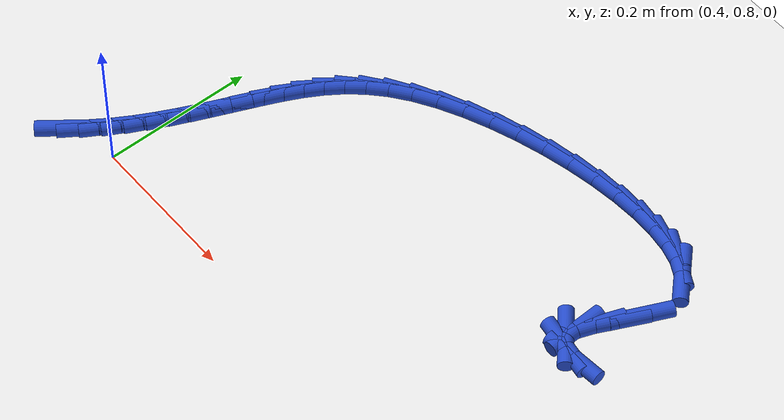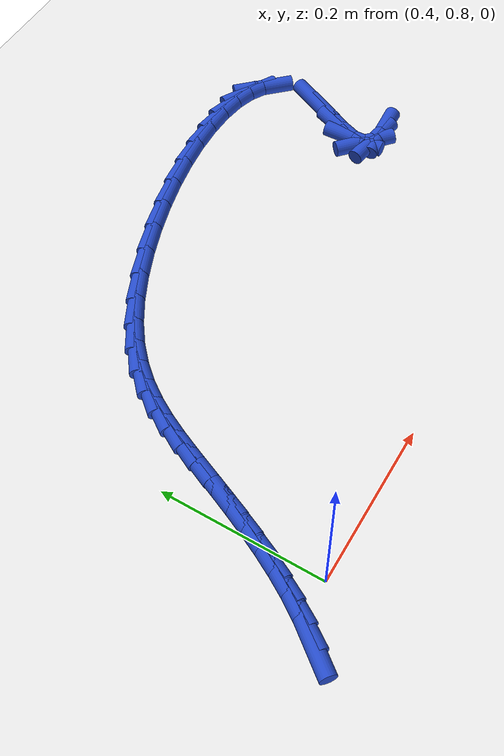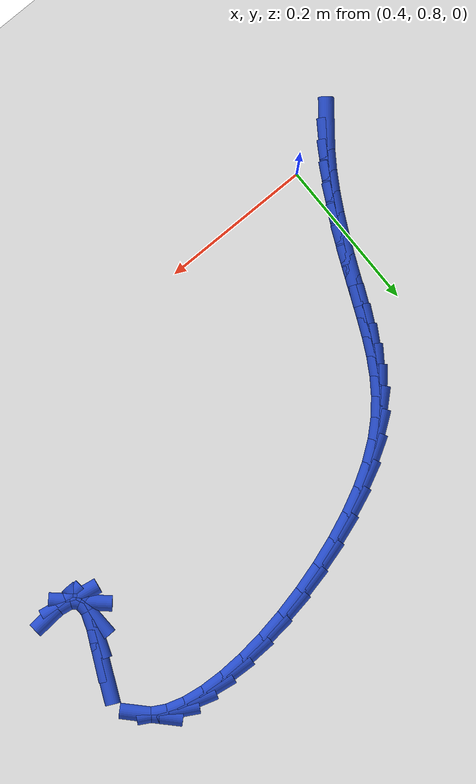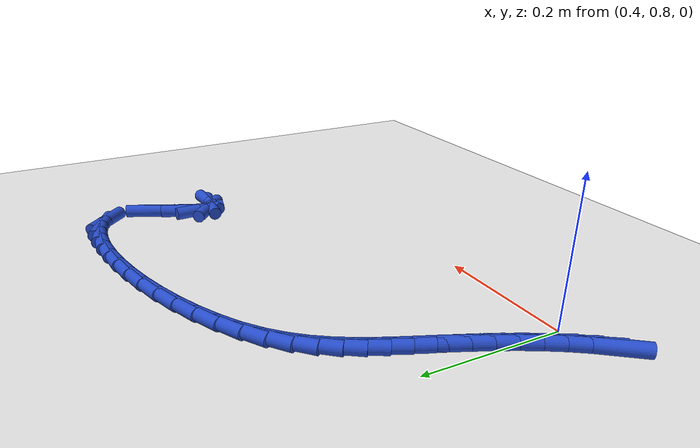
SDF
<sdf version="1.6">
 <world name="default">
  <model name="ground_plane">
   <static>1</static>
   <link name="link">
    <collision name="collision">
     <geometry><plane><normal>0 0 1</normal><size>100 100</size></plane></geometry>
     <surface><friction><ode><mu>100</mu><mu2>50</mu2></ode></friction></surface>
    </collision>
    <visual name="visual">
     <cast_shadows>0</cast_shadows>
     <geometry><plane><normal>0 0 1</normal><size>100 100</size></plane></geometry>
     <material>
      <script><uri>file://media/materials/scripts/gazebo.material</uri><name>Gazebo/WhiteGlow</name></script>
     </material>
    </visual>
   </link>
  </model>
  <model name="line">
   <link name="link_34">
    <pose>0.3350393058747735 0.7800018976269011 0.01 0 1.57 0.9064747410652184</pose>
    <collision name="collision">
     <geometry><cylinder><radius>0.01</radius><length>0.08</length></cylinder></geometry>
    </collision>
    <visual name="visual">
     <material>
      <script><name>Gazebo/Blue</name><uri>file://media/materials/scripts/gazebo.material</uri></script>
     </material>
     <geometry><cylinder><radius>0.01</radius><length>0.08</length></cylinder></geometry>
    </visual>
   </link>
   <link name="link_35">
    <pose>0.3513916981655486 0.8008847679926853 0.01 0 1.57 0.9727800219091481</pose>
    <collision name="collision">
     <geometry><cylinder><radius>0.01</radius><length>0.08</length></cylinder></geometry>
    </collision>
    <visual name="visual">
     <material>
      <script><name>Gazebo/Blue</name><uri>file://media/materials/scripts/gazebo.material</uri></script>
     </material>
     <geometry><cylinder><radius>0.01</radius><length>0.08</length></cylinder></geometry>
    </visual>
   </link>
   <link name="link_36">
    <pose>0.3664839107434145 0.8230391704214376 0.01 0 1.57 1.0281798192425016</pose>
    <collision name="collision">
     <geometry><cylinder><radius>0.01</radius><length>0.08</length></cylinder></geometry>
    </collision>
    <visual name="visual">
     <material>
      <script><name>Gazebo/Blue</name><uri>file://media/materials/scripts/gazebo.material</uri></script>
     </material>
     <geometry><cylinder><radius>0.01</radius><length>0.08</length></cylinder></geometry>
    </visual>
   </link>
   <link name="link_37">
    <pose>0.3804607368540602 0.8462182987084192 0.01 0 1.57 1.073422070494423</pose>
    <collision name="collision">
     <geometry><cylinder><radius>0.01</radius><length>0.08</length></cylinder></geometry>
    </collision>
    <visual name="visual">
     <material>
      <script><name>Gazebo/Blue</name><uri>file://media/materials/scripts/gazebo.material</uri></script>
     </material>
     <geometry><cylinder><radius>0.01</radius><length>0.08</length></cylinder></geometry>
    </visual>
   </link>
   <link name="link_38">
    <pose>0.39346696974317397 0.8701753466488901 0.01 0 1.57 1.1092301784177665</pose>
    <collision name="collision">
     <geometry><cylinder><radius>0.01</radius><length>0.08</length></cylinder></geometry>
    </collision>
    <visual name="visual">
     <material>
      <script><name>Gazebo/Blue</name><uri>file://media/materials/scripts/gazebo.material</uri></script>
     </material>
     <geometry><cylinder><radius>0.01</radius><length>0.08</length></cylinder></geometry>
    </visual>
   </link>
   <link name="link_39">
    <pose>0.40564740265644483 0.894663508038111 0.01 0 1.57 1.1361950923245538</pose>
    <collision name="collision">
     <geometry><cylinder><radius>0.01</radius><length>0.08</length></cylinder></geometry>
    </collision>
    <visual name="visual">
     <material>
      <script><name>Gazebo/Blue</name><uri>file://media/materials/scripts/gazebo.material</uri></script>
     </material>
     <geometry><cylinder><radius>0.01</radius><length>0.08</length></cylinder></geometry>
    </visual>
   </link>
   <link name="link_40">
    <pose>0.41714682883956183 0.9194359766713431 0.01 0 1.57 1.1547092960968621</pose>
    <collision name="collision">
     <geometry><cylinder><radius>0.01</radius><length>0.08</length></cylinder></geometry>
    </collision>
    <visual name="visual">
     <material>
      <script><name>Gazebo/Blue</name><uri>file://media/materials/scripts/gazebo.material</uri></script>
     </material>
     <geometry><cylinder><radius>0.01</radius><length>0.08</length></cylinder></geometry>
    </visual>
   </link>
   <link name="link_41">
    <pose>0.4281100415382134 0.9442459463438466 0.01 0 1.57 1.164921048920446</pose>
    <collision name="collision">
     <geometry><cylinder><radius>0.01</radius><length>0.08</length></cylinder></geometry>
    </collision>
    <visual name="visual">
     <material>
      <script><name>Gazebo/Blue</name><uri>file://media/materials/scripts/gazebo.material</uri></script>
     </material>
     <geometry><cylinder><radius>0.01</radius><length>0.08</length></cylinder></geometry>
    </visual>
   </link>
   <link name="link_42">
    <pose>0.43868183399808847 0.9688466108508826 0.01 0 1.57 1.165722030070353</pose>
    <collision name="collision">
     <geometry><cylinder><radius>0.01</radius><length>0.08</length></cylinder></geometry>
    </collision>
    <visual name="visual">
     <material>
      <script><name>Gazebo/Blue</name><uri>file://media/materials/scripts/gazebo.material</uri></script>
     </material>
     <geometry><cylinder><radius>0.01</radius><length>0.08</length></cylinder></geometry>
    </visual>
   </link>
   <link name="link_43">
    <pose>0.44903976972058357 0.9930029499423543 0.01 0 1.57 1.1481923088561112</pose>
    <collision name="collision">
     <geometry><cylinder><radius>0.01</radius><length>0.08</length></cylinder></geometry>
    </collision>
    <visual name="visual">
     <material>
      <script><name>Gazebo/Blue</name><uri>file://media/materials/scripts/gazebo.material</uri></script>
     </material>
     <geometry><cylinder><radius>0.01</radius><length>0.08</length></cylinder></geometry>
    </visual>
   </link>
   <link name="link_44">
    <pose>0.4596428870624329 1.0165811769352082 0.01 0 1.57 1.1074367402879843</pose>
    <collision name="collision">
     <geometry><cylinder><radius>0.01</radius><length>0.08</length></cylinder></geometry>
    </collision>
    <visual name="visual">
     <material>
      <script><name>Gazebo/Blue</name><uri>file://media/materials/scripts/gazebo.material</uri></script>
     </material>
     <geometry><cylinder><radius>0.01</radius><length>0.08</length></cylinder></geometry>
    </visual>
   </link>
   <link name="link_45">
    <pose>0.4710935805921025 1.039499063786162 0.01 0 1.57 1.0438678880762704</pose>
    <collision name="collision">
     <geometry><cylinder><radius>0.01</radius><length>0.08</length></cylinder></geometry>
    </collision>
    <visual name="visual">
     <material>
      <script><name>Gazebo/Blue</name><uri>file://media/materials/scripts/gazebo.material</uri></script>
     </material>
     <geometry><cylinder><radius>0.01</radius><length>0.08</length></cylinder></geometry>
    </visual>
   </link>
   <link name="link_46">
    <pose>0.4839953834810206 1.0616747919550809 0.01 0 1.57 0.9597492011556852</pose>
    <collision name="collision">
     <geometry><cylinder><radius>0.01</radius><length>0.08</length></cylinder></geometry>
    </collision>
    <visual name="visual">
     <material>
      <script><name>Gazebo/Blue</name><uri>file://media/materials/scripts/gazebo.material</uri></script>
     </material>
     <geometry><cylinder><radius>0.01</radius><length>0.08</length></cylinder></geometry>
    </visual>
   </link>
   <link name="link_47">
    <pose>0.498951828900616 1.0830265429018318 0.01 0 1.57 0.859651599224505</pose>
    <collision name="collision">
     <geometry><cylinder><radius>0.01</radius><length>0.08</length></cylinder></geometry>
    </collision>
    <visual name="visual">
     <material>
      <script><name>Gazebo/Blue</name><uri>file://media/materials/scripts/gazebo.material</uri></script>
     </material>
     <geometry><cylinder><radius>0.01</radius><length>0.08</length></cylinder></geometry>
    </visual>
   </link>
   <link name="link_48">
    <pose>0.5165664500223166 1.103472498086279 0.01 0 1.57 0.7502570467437116</pose>
    <collision name="collision">
     <geometry><cylinder><radius>0.01</radius><length>0.08</length></cylinder></geometry>
    </collision>
    <visual name="visual">
     <material>
      <script><name>Gazebo/Blue</name><uri>file://media/materials/scripts/gazebo.material</uri></script>
     </material>
     <geometry><cylinder><radius>0.01</radius><length>0.08</length></cylinder></geometry>
    </visual>
   </link>
   <link name="link_49">
    <pose>0.5374427800175513 1.1229308389682897 0.01 0 1.57 0.6394661377737907</pose>
    <collision name="collision">
     <geometry><cylinder><radius>0.01</radius><length>0.08</length></cylinder></geometry>
    </collision>
    <visual name="visual">
     <material>
      <script><name>Gazebo/Blue</name><uri>file://media/materials/scripts/gazebo.material</uri></script>
     </material>
     <geometry><cylinder><radius>0.01</radius><length>0.08</length></cylinder></geometry>
    </visual>
   </link>
   <link name="link_50">
    <pose>0.562167015864104 1.1413186078487751 0.01 0 1.57 0.5416287361199237</pose>
    <collision name="collision">
     <geometry><cylinder><radius>0.01</radius><length>0.08</length></cylinder></geometry>
    </collision>
    <visual name="visual">
     <material>
      <script><name>Gazebo/Blue</name><uri>file://media/materials/scripts/gazebo.material</uri></script>
     </material>
     <geometry><cylinder><radius>0.01</radius><length>0.08</length></cylinder></geometry>
    </visual>
   </link>
   <link name="link_51">
    <pose>0.5907492566686642 1.1585149917149844 0.01 0 1.57 0.46267410280138355</pose>
    <collision name="collision">
     <geometry><cylinder><radius>0.01</radius><length>0.08</length></cylinder></geometry>
    </collision>
    <visual name="visual">
     <material>
      <script><name>Gazebo/Blue</name><uri>file://media/materials/scripts/gazebo.material</uri></script>
     </material>
     <geometry><cylinder><radius>0.01</radius><length>0.08</length></cylinder></geometry>
    </visual>
   </link>
   <link name="link_52">
    <pose>0.6225033749372363 1.1743534285978305 0.01 0 1.57 0.3963330868034903</pose>
    <collision name="collision">
     <geometry><cylinder><radius>0.01</radius><length>0.08</length></cylinder></geometry>
    </collision>
    <visual name="visual">
     <material>
      <script><name>Gazebo/Blue</name><uri>file://media/materials/scripts/gazebo.material</uri></script>
     </material>
     <geometry><cylinder><radius>0.01</radius><length>0.08</length></cylinder></geometry>
    </visual>
   </link>
   <link name="link_53">
    <pose>0.6567016107463863 1.1886646208668863 0.01 0 1.57 0.3377792730375458</pose>
    <collision name="collision">
     <geometry><cylinder><radius>0.01</radius><length>0.08</length></cylinder></geometry>
    </collision>
    <visual name="visual">
     <material>
      <script><name>Gazebo/Blue</name><uri>file://media/materials/scripts/gazebo.material</uri></script>
     </material>
     <geometry><cylinder><radius>0.01</radius><length>0.08</length></cylinder></geometry>
    </visual>
   </link>
   <link name="link_54">
    <pose>0.692616204172679 1.201279270891723 0.01 0 1.57 0.28342894368360994</pose>
    <collision name="collision">
     <geometry><cylinder><radius>0.01</radius><length>0.08</length></cylinder></geometry>
    </collision>
    <visual name="visual">
     <material>
      <script><name>Gazebo/Blue</name><uri>file://media/materials/scripts/gazebo.material</uri></script>
     </material>
     <geometry><cylinder><radius>0.01</radius><length>0.08</length></cylinder></geometry>
    </visual>
   </link>
   <link name="link_55">
    <pose>0.7295193952926812 1.2120280810419126 0.01 0 1.57 0.23030511879337834</pose>
    <collision name="collision">
     <geometry><cylinder><radius>0.01</radius><length>0.08</length></cylinder></geometry>
    </collision>
    <visual name="visual">
     <material>
      <script><name>Gazebo/Blue</name><uri>file://media/materials/scripts/gazebo.material</uri></script>
     </material>
     <geometry><cylinder><radius>0.01</radius><length>0.08</length></cylinder></geometry>
    </visual>
   </link>
   <link name="link_56">
    <pose>0.766683424182958 1.2207417536870269 0.01 0 1.57 0.1755514905643811</pose>
    <collision name="collision">
     <geometry><cylinder><radius>0.01</radius><length>0.08</length></cylinder></geometry>
    </collision>
    <visual name="visual">
     <material>
      <script><name>Gazebo/Blue</name><uri>file://media/materials/scripts/gazebo.material</uri></script>
     </material>
     <geometry><cylinder><radius>0.01</radius><length>0.08</length></cylinder></geometry>
    </visual>
   </link>
   <link name="link_57">
    <pose>0.8033805309200753 1.2272509911966383 0.01 0 1.57 0.11596252953802715</pose>
    <collision name="collision">
     <geometry><cylinder><radius>0.01</radius><length>0.08</length></cylinder></geometry>
    </collision>
    <visual name="visual">
     <material>
      <script><name>Gazebo/Blue</name><uri>file://media/materials/scripts/gazebo.material</uri></script>
     </material>
     <geometry><cylinder><radius>0.01</radius><length>0.08</length></cylinder></geometry>
    </visual>
   </link>
   <link name="link_58">
    <pose>0.8388829555805991 1.231386495940318 0.01 0 1.57 0.047387819163450744</pose>
    <collision name="collision">
     <geometry><cylinder><radius>0.01</radius><length>0.08</length></cylinder></geometry>
    </collision>
    <visual name="visual">
     <material>
      <script><name>Gazebo/Blue</name><uri>file://media/materials/scripts/gazebo.material</uri></script>
     </material>
     <geometry><cylinder><radius>0.01</radius><length>0.08</length></cylinder></geometry>
    </visual>
   </link>
   <link name="link_59">
    <pose>0.8724629382410944 1.2329789702876384 0.01 0 1.57 -0.036190516044978985</pose>
    <collision name="collision">
     <geometry><cylinder><radius>0.01</radius><length>0.08</length></cylinder></geometry>
    </collision>
    <visual name="visual">
     <material>
      <script><name>Gazebo/Blue</name><uri>file://media/materials/scripts/gazebo.material</uri></script>
     </material>
     <geometry><cylinder><radius>0.01</radius><length>0.08</length></cylinder></geometry>
    </visual>
   </link>
   <link name="link_60">
    <pose>0.9033927189781276 1.231859116608171 0.01 0 1.57 -0.14422625214484894</pose>
    <collision name="collision">
     <geometry><cylinder><radius>0.01</radius><length>0.08</length></cylinder></geometry>
    </collision>
    <visual name="visual">
     <material>
      <script><name>Gazebo/Blue</name><uri>file://media/materials/scripts/gazebo.material</uri></script>
     </material>
     <geometry><cylinder><radius>0.01</radius><length>0.08</length></cylinder></geometry>
    </visual>
   </link>
   <link name="link_61">
    <pose>0.9309445378682641 1.227857637271488 0.01 0 1.57 -0.2921834049710707</pose>
    <collision name="collision">
     <geometry><cylinder><radius>0.01</radius><length>0.08</length></cylinder></geometry>
    </collision>
    <visual name="visual">
     <material>
      <script><name>Gazebo/Blue</name><uri>file://media/materials/scripts/gazebo.material</uri></script>
     </material>
     <geometry><cylinder><radius>0.01</radius><length>0.08</length></cylinder></geometry>
    </visual>
   </link>
   <link name="link_62">
    <pose>0.9543906349880698 1.220805234647161 0.01 0 1.57 -0.5043139969758289</pose>
    <collision name="collision">
     <geometry><cylinder><radius>0.01</radius><length>0.08</length></cylinder></geometry>
    </collision>
    <visual name="visual">
     <material>
      <script><name>Gazebo/Blue</name><uri>file://media/materials/scripts/gazebo.material</uri></script>
     </material>
     <geometry><cylinder><radius>0.01</radius><length>0.08</length></cylinder></geometry>
    </visual>
   </link>
   <link name="link_63">
    <pose>0.9730032504141105 1.210532611104762 0.01 0 1.57 -0.8082578233585817</pose>
    <collision name="collision">
     <geometry><cylinder><radius>0.01</radius><length>0.08</length></cylinder></geometry>
    </collision>
    <visual name="visual">
     <material>
      <script><name>Gazebo/Blue</name><uri>file://media/materials/scripts/gazebo.material</uri></script>
     </material>
     <geometry><cylinder><radius>0.01</radius><length>0.08</length></cylinder></geometry>
    </visual>
   </link>
   <link name="link_67">
    <pose>0.9848858580511837 1.1340405735744503 0.01 0 1.57 1.1351473967602748</pose>
    <collision name="collision">
     <geometry><cylinder><radius>0.01</radius><length>0.08</length></cylinder></geometry>
    </collision>
    <visual name="visual">
     <material>
      <script><name>Gazebo/Blue</name><uri>file://media/materials/scripts/gazebo.material</uri></script>
     </material>
     <geometry><cylinder><radius>0.01</radius><length>0.08</length></cylinder></geometry>
    </visual>
   </link>
   <link name="link_68">
    <pose>0.9725397291450519 1.1075169066011745 0.01 0 1.57 1.1159459665035485</pose>
    <collision name="collision">
     <geometry><cylinder><radius>0.01</radius><length>0.08</length></cylinder></geometry>
    </collision>
    <visual name="visual">
     <material>
      <script><name>Gazebo/Blue</name><uri>file://media/materials/scripts/gazebo.material</uri></script>
     </material>
     <geometry><cylinder><radius>0.01</radius><length>0.08</length></cylinder></geometry>
    </visual>
   </link>
   <link name="link_69">
    <pose>0.9600671545562722 1.08201329545561 0.01 0 1.57 1.2144565226582074</pose>
    <collision name="collision">
     <geometry><cylinder><radius>0.01</radius><length>0.08</length></cylinder></geometry>
    </collision>
    <visual name="visual">
     <material>
      <script><name>Gazebo/Blue</name><uri>file://media/materials/scripts/gazebo.material</uri></script>
     </material>
     <geometry><cylinder><radius>0.01</radius><length>0.08</length></cylinder></geometry>
    </visual>
   </link>
   <link name="link_70">
    <pose>0.9520315110617423 1.0604254397495434 0.01 0 1.57 -1.5397284438039578</pose>
    <collision name="collision">
     <geometry><cylinder><radius>0.01</radius><length>0.08</length></cylinder></geometry>
    </collision>
    <visual name="visual">
     <material>
      <script><name>Gazebo/Blue</name><uri>file://media/materials/scripts/gazebo.material</uri></script>
     </material>
     <geometry><cylinder><radius>0.01</radius><length>0.08</length></cylinder></geometry>
    </visual>
   </link>
   <link name="link_71">
    <pose>0.9525009719395982 1.0453194917527076 0.01 0 1.57 -0.7347622642415702</pose>
    <collision name="collision">
     <geometry><cylinder><radius>0.01</radius><length>0.08</length></cylinder></geometry>
    </collision>
    <visual name="visual">
     <material>
      <script><name>Gazebo/Blue</name><uri>file://media/materials/scripts/gazebo.material</uri></script>
     </material>
     <geometry><cylinder><radius>0.01</radius><length>0.08</length></cylinder></geometry>
    </visual>
   </link>
   <link name="link_72">
    <pose>0.9618938753666514 1.0368327165004294 0.01 0 1.57 -0.16320870271021212</pose>
    <collision name="collision">
     <geometry><cylinder><radius>0.01</radius><length>0.08</length></cylinder></geometry>
    </collision>
    <visual name="visual">
     <material>
      <script><name>Gazebo/Blue</name><uri>file://media/materials/scripts/gazebo.material</uri></script>
     </material>
     <geometry><cylinder><radius>0.01</radius><length>0.08</length></cylinder></geometry>
    </visual>
   </link>
   <link name="link_73">
    <pose>0.9789966084901018 1.034016350505387 0.01 0 1.57 0.08037353765980317</pose>
    <collision name="collision">
     <geometry><cylinder><radius>0.01</radius><length>0.08</length></cylinder></geometry>
    </collision>
    <visual name="visual">
     <material>
      <script><name>Gazebo/Blue</name><uri>file://media/materials/scripts/gazebo.material</uri></script>
     </material>
     <geometry><cylinder><radius>0.01</radius><length>0.08</length></cylinder></geometry>
    </visual>
   </link>
  </model>
 </world>
</sdf>
